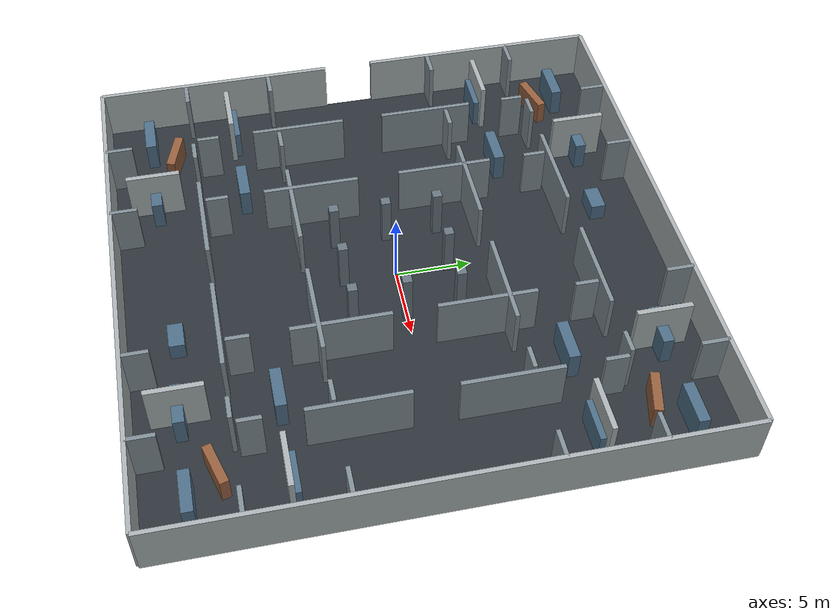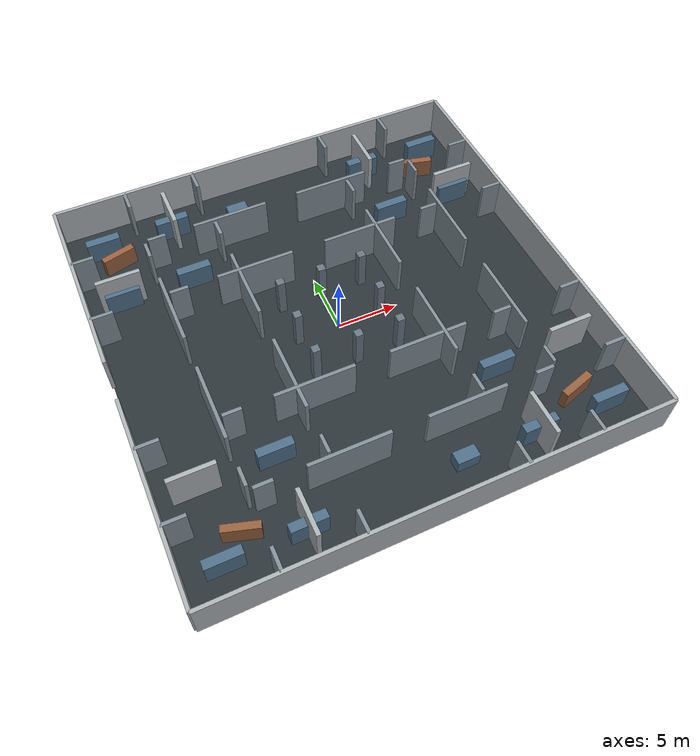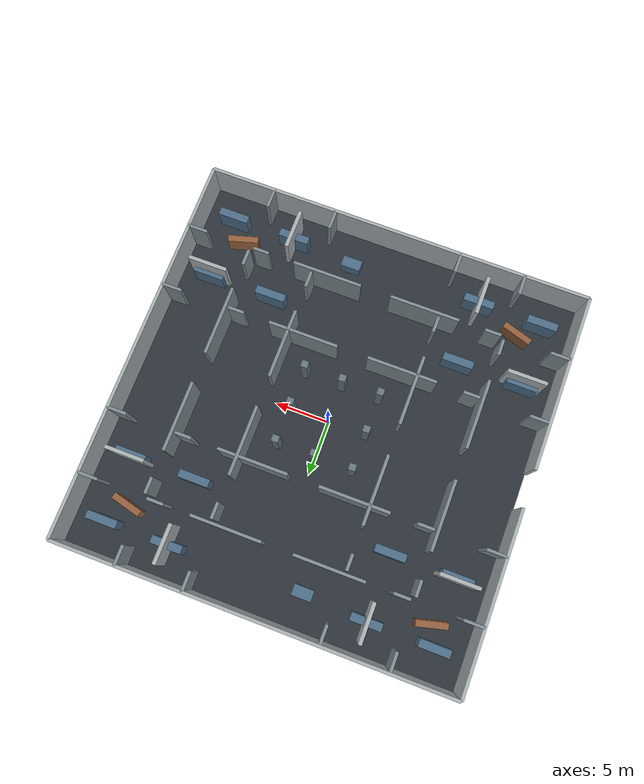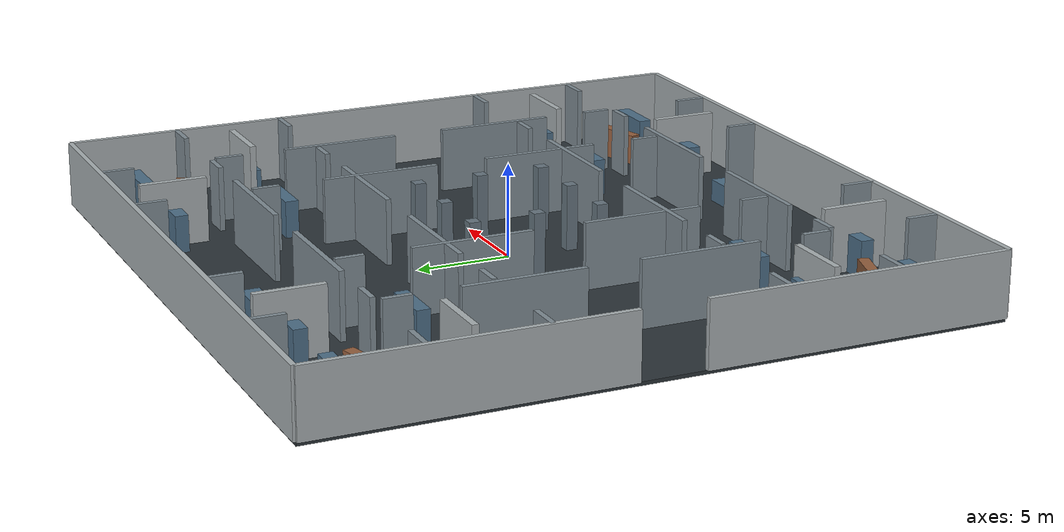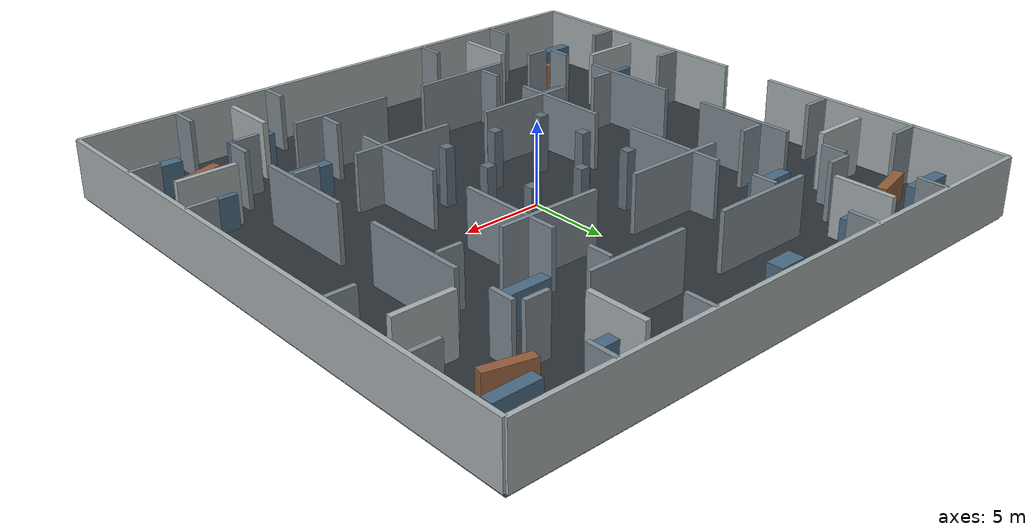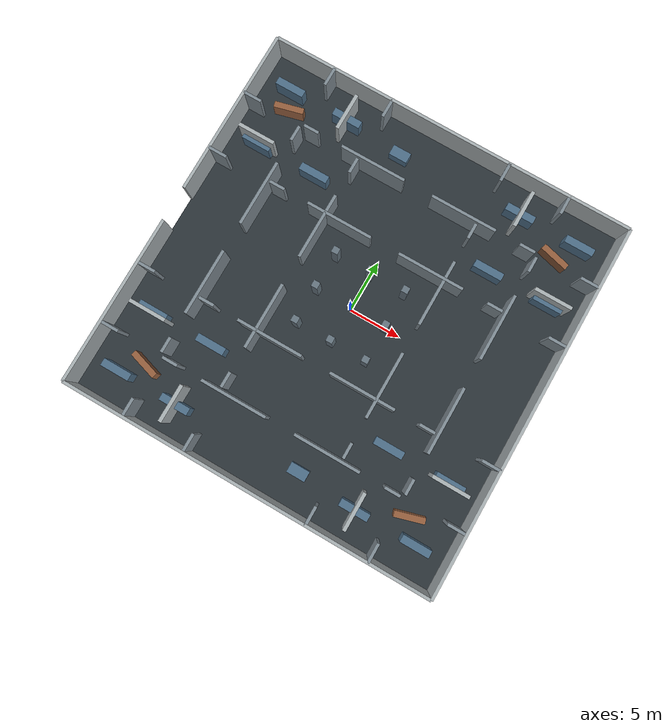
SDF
<?xml version='1.0'?>
<sdf version='1.6'>
<world name='s3_topology_stress'>
  <gravity>0 0 -9.81</gravity>
  <scene><ambient>0.62 0.64 0.66 1</ambient><background>0.72 0.75 0.78 1</background><shadows>true</shadows></scene>
  <include><uri>model://sun</uri></include>
    <model name='floor'>
    <static>true</static>
    <pose>0.0000 0.0000 -0.1000 0.000000 0.000000 0.000000</pose>
    <link name='link'>
      <collision name='collision'><geometry><box><size>36.0000 36.0000 0.2000</size></box></geometry></collision>
      <visual name='visual'><geometry><box><size>36.0000 36.0000 0.2000</size></box></geometry><material><ambient>0.170 0.200 0.220 1</ambient><diffuse>0.170 0.200 0.220 1</diffuse></material></visual>
    </link>
  </model>
  <model name='envelope_north'>
    <static>true</static>
    <pose>0.0000 18.0000 1.7500 0.000000 0.000000 0.000000</pose>
    <link name='link'>
      <collision name='collision'><geometry><box><size>36.0000 0.2800 3.5000</size></box></geometry></collision>
      <visual name='visual'><geometry><box><size>36.0000 0.2800 3.5000</size></box></geometry><material><ambient>0.660 0.690 0.700 1</ambient><diffuse>0.660 0.690 0.700 1</diffuse></material></visual>
    </link>
  </model>
  <model name='envelope_south'>
    <static>true</static>
    <pose>0.0000 -18.0000 1.7500 0.000000 0.000000 0.000000</pose>
    <link name='link'>
      <collision name='collision'><geometry><box><size>36.0000 0.2800 3.5000</size></box></geometry></collision>
      <visual name='visual'><geometry><box><size>36.0000 0.2800 3.5000</size></box></geometry><material><ambient>0.660 0.690 0.700 1</ambient><diffuse>0.660 0.690 0.700 1</diffuse></material></visual>
    </link>
  </model>
  <model name='envelope_east'>
    <static>true</static>
    <pose>18.0000 0.0000 1.7500 0.000000 0.000000 1.570796</pose>
    <link name='link'>
      <collision name='collision'><geometry><box><size>36.0000 0.2800 3.5000</size></box></geometry></collision>
      <visual name='visual'><geometry><box><size>36.0000 0.2800 3.5000</size></box></geometry><material><ambient>0.660 0.690 0.700 1</ambient><diffuse>0.660 0.690 0.700 1</diffuse></material></visual>
    </link>
  </model>
  <model name='envelope_west_00'>
    <static>true</static>
    <pose>-18.0000 -9.8500 1.7500 0.000000 0.000000 1.570796</pose>
    <link name='link'>
      <collision name='collision'><geometry><box><size>16.3000 0.2800 3.5000</size></box></geometry></collision>
      <visual name='visual'><geometry><box><size>16.3000 0.2800 3.5000</size></box></geometry><material><ambient>0.660 0.690 0.700 1</ambient><diffuse>0.660 0.690 0.700 1</diffuse></material></visual>
    </link>
  </model>
  <model name='envelope_west_01'>
    <static>true</static>
    <pose>-18.0000 9.8500 1.7500 0.000000 0.000000 1.570796</pose>
    <link name='link'>
      <collision name='collision'><geometry><box><size>16.3000 0.2800 3.5000</size></box></geometry></collision>
      <visual name='visual'><geometry><box><size>16.3000 0.2800 3.5000</size></box></geometry><material><ambient>0.660 0.690 0.700 1</ambient><diffuse>0.660 0.690 0.700 1</diffuse></material></visual>
    </link>
  </model>
  <model name='s3_horizontal_south_00'>
    <static>true</static>
    <pose>-17.1000 -12.0000 1.7500 0.000000 0.000000 0.000000</pose>
    <link name='link'>
      <collision name='collision'><geometry><box><size>1.8000 0.2800 3.5000</size></box></geometry></collision>
      <visual name='visual'><geometry><box><size>1.8000 0.2800 3.5000</size></box></geometry><material><ambient>0.500 0.550 0.580 1</ambient><diffuse>0.500 0.550 0.580 1</diffuse></material></visual>
    </link>
  </model>
  <model name='s3_horizontal_south_01'>
    <static>true</static>
    <pose>-10.9500 -12.0000 1.7500 0.000000 0.000000 0.000000</pose>
    <link name='link'>
      <collision name='collision'><geometry><box><size>1.5000 0.2800 3.5000</size></box></geometry></collision>
      <visual name='visual'><geometry><box><size>1.5000 0.2800 3.5000</size></box></geometry><material><ambient>0.500 0.550 0.580 1</ambient><diffuse>0.500 0.550 0.580 1</diffuse></material></visual>
    </link>
  </model>
  <model name='s3_horizontal_south_02'>
    <static>true</static>
    <pose>-4.6000 -12.0000 1.7500 0.000000 0.000000 0.000000</pose>
    <link name='link'>
      <collision name='collision'><geometry><box><size>6.4000 0.2800 3.5000</size></box></geometry></collision>
      <visual name='visual'><geometry><box><size>6.4000 0.2800 3.5000</size></box></geometry><material><ambient>0.500 0.550 0.580 1</ambient><diffuse>0.500 0.550 0.580 1</diffuse></material></visual>
    </link>
  </model>
  <model name='s3_horizontal_south_03'>
    <static>true</static>
    <pose>4.6000 -12.0000 1.7500 0.000000 0.000000 0.000000</pose>
    <link name='link'>
      <collision name='collision'><geometry><box><size>6.4000 0.2800 3.5000</size></box></geometry></collision>
      <visual name='visual'><geometry><box><size>6.4000 0.2800 3.5000</size></box></geometry><material><ambient>0.500 0.550 0.580 1</ambient><diffuse>0.500 0.550 0.580 1</diffuse></material></visual>
    </link>
  </model>
  <model name='s3_horizontal_south_04'>
    <static>true</static>
    <pose>10.9500 -12.0000 1.7500 0.000000 0.000000 0.000000</pose>
    <link name='link'>
      <collision name='collision'><geometry><box><size>1.5000 0.2800 3.5000</size></box></geometry></collision>
      <visual name='visual'><geometry><box><size>1.5000 0.2800 3.5000</size></box></geometry><material><ambient>0.500 0.550 0.580 1</ambient><diffuse>0.500 0.550 0.580 1</diffuse></material></visual>
    </link>
  </model>
  <model name='s3_horizontal_south_05'>
    <static>true</static>
    <pose>17.1000 -12.0000 1.7500 0.000000 0.000000 0.000000</pose>
    <link name='link'>
      <collision name='collision'><geometry><box><size>1.8000 0.2800 3.5000</size></box></geometry></collision>
      <visual name='visual'><geometry><box><size>1.8000 0.2800 3.5000</size></box></geometry><material><ambient>0.500 0.550 0.580 1</ambient><diffuse>0.500 0.550 0.580 1</diffuse></material></visual>
    </link>
  </model>
  <model name='s3_horizontal_south_inner_00'>
    <static>true</static>
    <pose>-17.1000 -6.0000 1.7500 0.000000 0.000000 0.000000</pose>
    <link name='link'>
      <collision name='collision'><geometry><box><size>1.8000 0.2800 3.5000</size></box></geometry></collision>
      <visual name='visual'><geometry><box><size>1.8000 0.2800 3.5000</size></box></geometry><material><ambient>0.500 0.550 0.580 1</ambient><diffuse>0.500 0.550 0.580 1</diffuse></material></visual>
    </link>
  </model>
  <model name='s3_horizontal_south_inner_01'>
    <static>true</static>
    <pose>-10.9500 -6.0000 1.7500 0.000000 0.000000 0.000000</pose>
    <link name='link'>
      <collision name='collision'><geometry><box><size>1.5000 0.2800 3.5000</size></box></geometry></collision>
      <visual name='visual'><geometry><box><size>1.5000 0.2800 3.5000</size></box></geometry><material><ambient>0.500 0.550 0.580 1</ambient><diffuse>0.500 0.550 0.580 1</diffuse></material></visual>
    </link>
  </model>
  <model name='s3_horizontal_south_inner_02'>
    <static>true</static>
    <pose>-4.6000 -6.0000 1.7500 0.000000 0.000000 0.000000</pose>
    <link name='link'>
      <collision name='collision'><geometry><box><size>6.4000 0.2800 3.5000</size></box></geometry></collision>
      <visual name='visual'><geometry><box><size>6.4000 0.2800 3.5000</size></box></geometry><material><ambient>0.500 0.550 0.580 1</ambient><diffuse>0.500 0.550 0.580 1</diffuse></material></visual>
    </link>
  </model>
  <model name='s3_horizontal_south_inner_03'>
    <static>true</static>
    <pose>4.6000 -6.0000 1.7500 0.000000 0.000000 0.000000</pose>
    <link name='link'>
      <collision name='collision'><geometry><box><size>6.4000 0.2800 3.5000</size></box></geometry></collision>
      <visual name='visual'><geometry><box><size>6.4000 0.2800 3.5000</size></box></geometry><material><ambient>0.500 0.550 0.580 1</ambient><diffuse>0.500 0.550 0.580 1</diffuse></material></visual>
    </link>
  </model>
  <model name='s3_horizontal_south_inner_04'>
    <static>true</static>
    <pose>10.9500 -6.0000 1.7500 0.000000 0.000000 0.000000</pose>
    <link name='link'>
      <collision name='collision'><geometry><box><size>1.5000 0.2800 3.5000</size></box></geometry></collision>
      <visual name='visual'><geometry><box><size>1.5000 0.2800 3.5000</size></box></geometry><material><ambient>0.500 0.550 0.580 1</ambient><diffuse>0.500 0.550 0.580 1</diffuse></material></visual>
    </link>
  </model>
  <model name='s3_horizontal_south_inner_05'>
    <static>true</static>
    <pose>17.1000 -6.0000 1.7500 0.000000 0.000000 0.000000</pose>
    <link name='link'>
      <collision name='collision'><geometry><box><size>1.8000 0.2800 3.5000</size></box></geometry></collision>
      <visual name='visual'><geometry><box><size>1.8000 0.2800 3.5000</size></box></geometry><material><ambient>0.500 0.550 0.580 1</ambient><diffuse>0.500 0.550 0.580 1</diffuse></material></visual>
    </link>
  </model>
  <model name='s3_horizontal_north_inner_00'>
    <static>true</static>
    <pose>-17.1000 6.0000 1.7500 0.000000 0.000000 0.000000</pose>
    <link name='link'>
      <collision name='collision'><geometry><box><size>1.8000 0.2800 3.5000</size></box></geometry></collision>
      <visual name='visual'><geometry><box><size>1.8000 0.2800 3.5000</size></box></geometry><material><ambient>0.500 0.550 0.580 1</ambient><diffuse>0.500 0.550 0.580 1</diffuse></material></visual>
    </link>
  </model>
  <model name='s3_horizontal_north_inner_01'>
    <static>true</static>
    <pose>-10.9500 6.0000 1.7500 0.000000 0.000000 0.000000</pose>
    <link name='link'>
      <collision name='collision'><geometry><box><size>1.5000 0.2800 3.5000</size></box></geometry></collision>
      <visual name='visual'><geometry><box><size>1.5000 0.2800 3.5000</size></box></geometry><material><ambient>0.500 0.550 0.580 1</ambient><diffuse>0.500 0.550 0.580 1</diffuse></material></visual>
    </link>
  </model>
  <model name='s3_horizontal_north_inner_02'>
    <static>true</static>
    <pose>-4.6000 6.0000 1.7500 0.000000 0.000000 0.000000</pose>
    <link name='link'>
      <collision name='collision'><geometry><box><size>6.4000 0.2800 3.5000</size></box></geometry></collision>
      <visual name='visual'><geometry><box><size>6.4000 0.2800 3.5000</size></box></geometry><material><ambient>0.500 0.550 0.580 1</ambient><diffuse>0.500 0.550 0.580 1</diffuse></material></visual>
    </link>
  </model>
  <model name='s3_horizontal_north_inner_03'>
    <static>true</static>
    <pose>4.6000 6.0000 1.7500 0.000000 0.000000 0.000000</pose>
    <link name='link'>
      <collision name='collision'><geometry><box><size>6.4000 0.2800 3.5000</size></box></geometry></collision>
      <visual name='visual'><geometry><box><size>6.4000 0.2800 3.5000</size></box></geometry><material><ambient>0.500 0.550 0.580 1</ambient><diffuse>0.500 0.550 0.580 1</diffuse></material></visual>
    </link>
  </model>
  <model name='s3_horizontal_north_inner_04'>
    <static>true</static>
    <pose>10.9500 6.0000 1.7500 0.000000 0.000000 0.000000</pose>
    <link name='link'>
      <collision name='collision'><geometry><box><size>1.5000 0.2800 3.5000</size></box></geometry></collision>
      <visual name='visual'><geometry><box><size>1.5000 0.2800 3.5000</size></box></geometry><material><ambient>0.500 0.550 0.580 1</ambient><diffuse>0.500 0.550 0.580 1</diffuse></material></visual>
    </link>
  </model>
  <model name='s3_horizontal_north_inner_05'>
    <static>true</static>
    <pose>17.1000 6.0000 1.7500 0.000000 0.000000 0.000000</pose>
    <link name='link'>
      <collision name='collision'><geometry><box><size>1.8000 0.2800 3.5000</size></box></geometry></collision>
      <visual name='visual'><geometry><box><size>1.8000 0.2800 3.5000</size></box></geometry><material><ambient>0.500 0.550 0.580 1</ambient><diffuse>0.500 0.550 0.580 1</diffuse></material></visual>
    </link>
  </model>
  <model name='s3_horizontal_north_00'>
    <static>true</static>
    <pose>-17.1000 12.0000 1.7500 0.000000 0.000000 0.000000</pose>
    <link name='link'>
      <collision name='collision'><geometry><box><size>1.8000 0.2800 3.5000</size></box></geometry></collision>
      <visual name='visual'><geometry><box><size>1.8000 0.2800 3.5000</size></box></geometry><material><ambient>0.500 0.550 0.580 1</ambient><diffuse>0.500 0.550 0.580 1</diffuse></material></visual>
    </link>
  </model>
  <model name='s3_horizontal_north_01'>
    <static>true</static>
    <pose>-10.9500 12.0000 1.7500 0.000000 0.000000 0.000000</pose>
    <link name='link'>
      <collision name='collision'><geometry><box><size>1.5000 0.2800 3.5000</size></box></geometry></collision>
      <visual name='visual'><geometry><box><size>1.5000 0.2800 3.5000</size></box></geometry><material><ambient>0.500 0.550 0.580 1</ambient><diffuse>0.500 0.550 0.580 1</diffuse></material></visual>
    </link>
  </model>
  <model name='s3_horizontal_north_02'>
    <static>true</static>
    <pose>-4.6000 12.0000 1.7500 0.000000 0.000000 0.000000</pose>
    <link name='link'>
      <collision name='collision'><geometry><box><size>6.4000 0.2800 3.5000</size></box></geometry></collision>
      <visual name='visual'><geometry><box><size>6.4000 0.2800 3.5000</size></box></geometry><material><ambient>0.500 0.550 0.580 1</ambient><diffuse>0.500 0.550 0.580 1</diffuse></material></visual>
    </link>
  </model>
  <model name='s3_horizontal_north_03'>
    <static>true</static>
    <pose>4.6000 12.0000 1.7500 0.000000 0.000000 0.000000</pose>
    <link name='link'>
      <collision name='collision'><geometry><box><size>6.4000 0.2800 3.5000</size></box></geometry></collision>
      <visual name='visual'><geometry><box><size>6.4000 0.2800 3.5000</size></box></geometry><material><ambient>0.500 0.550 0.580 1</ambient><diffuse>0.500 0.550 0.580 1</diffuse></material></visual>
    </link>
  </model>
  <model name='s3_horizontal_north_04'>
    <static>true</static>
    <pose>10.9500 12.0000 1.7500 0.000000 0.000000 0.000000</pose>
    <link name='link'>
      <collision name='collision'><geometry><box><size>1.5000 0.2800 3.5000</size></box></geometry></collision>
      <visual name='visual'><geometry><box><size>1.5000 0.2800 3.5000</size></box></geometry><material><ambient>0.500 0.550 0.580 1</ambient><diffuse>0.500 0.550 0.580 1</diffuse></material></visual>
    </link>
  </model>
  <model name='s3_horizontal_north_05'>
    <static>true</static>
    <pose>17.1000 12.0000 1.7500 0.000000 0.000000 0.000000</pose>
    <link name='link'>
      <collision name='collision'><geometry><box><size>1.8000 0.2800 3.5000</size></box></geometry></collision>
      <visual name='visual'><geometry><box><size>1.8000 0.2800 3.5000</size></box></geometry><material><ambient>0.500 0.550 0.580 1</ambient><diffuse>0.500 0.550 0.580 1</diffuse></material></visual>
    </link>
  </model>
  <model name='s3_vertical_west_00'>
    <static>true</static>
    <pose>-12.0000 -17.1000 1.7500 0.000000 0.000000 1.570796</pose>
    <link name='link'>
      <collision name='collision'><geometry><box><size>1.8000 0.2800 3.5000</size></box></geometry></collision>
      <visual name='visual'><geometry><box><size>1.8000 0.2800 3.5000</size></box></geometry><material><ambient>0.500 0.550 0.580 1</ambient><diffuse>0.500 0.550 0.580 1</diffuse></material></visual>
    </link>
  </model>
  <model name='s3_vertical_west_01'>
    <static>true</static>
    <pose>-12.0000 -10.9500 1.7500 0.000000 0.000000 1.570796</pose>
    <link name='link'>
      <collision name='collision'><geometry><box><size>1.5000 0.2800 3.5000</size></box></geometry></collision>
      <visual name='visual'><geometry><box><size>1.5000 0.2800 3.5000</size></box></geometry><material><ambient>0.500 0.550 0.580 1</ambient><diffuse>0.500 0.550 0.580 1</diffuse></material></visual>
    </link>
  </model>
  <model name='s3_vertical_west_02'>
    <static>true</static>
    <pose>-12.0000 -4.6000 1.7500 0.000000 0.000000 1.570796</pose>
    <link name='link'>
      <collision name='collision'><geometry><box><size>6.4000 0.2800 3.5000</size></box></geometry></collision>
      <visual name='visual'><geometry><box><size>6.4000 0.2800 3.5000</size></box></geometry><material><ambient>0.500 0.550 0.580 1</ambient><diffuse>0.500 0.550 0.580 1</diffuse></material></visual>
    </link>
  </model>
  <model name='s3_vertical_west_03'>
    <static>true</static>
    <pose>-12.0000 4.6000 1.7500 0.000000 0.000000 1.570796</pose>
    <link name='link'>
      <collision name='collision'><geometry><box><size>6.4000 0.2800 3.5000</size></box></geometry></collision>
      <visual name='visual'><geometry><box><size>6.4000 0.2800 3.5000</size></box></geometry><material><ambient>0.500 0.550 0.580 1</ambient><diffuse>0.500 0.550 0.580 1</diffuse></material></visual>
    </link>
  </model>
  <model name='s3_vertical_west_04'>
    <static>true</static>
    <pose>-12.0000 10.9500 1.7500 0.000000 0.000000 1.570796</pose>
    <link name='link'>
      <collision name='collision'><geometry><box><size>1.5000 0.2800 3.5000</size></box></geometry></collision>
      <visual name='visual'><geometry><box><size>1.5000 0.2800 3.5000</size></box></geometry><material><ambient>0.500 0.550 0.580 1</ambient><diffuse>0.500 0.550 0.580 1</diffuse></material></visual>
    </link>
  </model>
  <model name='s3_vertical_west_05'>
    <static>true</static>
    <pose>-12.0000 17.1000 1.7500 0.000000 0.000000 1.570796</pose>
    <link name='link'>
      <collision name='collision'><geometry><box><size>1.8000 0.2800 3.5000</size></box></geometry></collision>
      <visual name='visual'><geometry><box><size>1.8000 0.2800 3.5000</size></box></geometry><material><ambient>0.500 0.550 0.580 1</ambient><diffuse>0.500 0.550 0.580 1</diffuse></material></visual>
    </link>
  </model>
  <model name='s3_vertical_west_inner_00'>
    <static>true</static>
    <pose>-6.0000 -17.1000 1.7500 0.000000 0.000000 1.570796</pose>
    <link name='link'>
      <collision name='collision'><geometry><box><size>1.8000 0.2800 3.5000</size></box></geometry></collision>
      <visual name='visual'><geometry><box><size>1.8000 0.2800 3.5000</size></box></geometry><material><ambient>0.500 0.550 0.580 1</ambient><diffuse>0.500 0.550 0.580 1</diffuse></material></visual>
    </link>
  </model>
  <model name='s3_vertical_west_inner_01'>
    <static>true</static>
    <pose>-6.0000 -10.9500 1.7500 0.000000 0.000000 1.570796</pose>
    <link name='link'>
      <collision name='collision'><geometry><box><size>1.5000 0.2800 3.5000</size></box></geometry></collision>
      <visual name='visual'><geometry><box><size>1.5000 0.2800 3.5000</size></box></geometry><material><ambient>0.500 0.550 0.580 1</ambient><diffuse>0.500 0.550 0.580 1</diffuse></material></visual>
    </link>
  </model>
  <model name='s3_vertical_west_inner_02'>
    <static>true</static>
    <pose>-6.0000 -4.6000 1.7500 0.000000 0.000000 1.570796</pose>
    <link name='link'>
      <collision name='collision'><geometry><box><size>6.4000 0.2800 3.5000</size></box></geometry></collision>
      <visual name='visual'><geometry><box><size>6.4000 0.2800 3.5000</size></box></geometry><material><ambient>0.500 0.550 0.580 1</ambient><diffuse>0.500 0.550 0.580 1</diffuse></material></visual>
    </link>
  </model>
  <model name='s3_vertical_west_inner_03'>
    <static>true</static>
    <pose>-6.0000 4.6000 1.7500 0.000000 0.000000 1.570796</pose>
    <link name='link'>
      <collision name='collision'><geometry><box><size>6.4000 0.2800 3.5000</size></box></geometry></collision>
      <visual name='visual'><geometry><box><size>6.4000 0.2800 3.5000</size></box></geometry><material><ambient>0.500 0.550 0.580 1</ambient><diffuse>0.500 0.550 0.580 1</diffuse></material></visual>
    </link>
  </model>
  <model name='s3_vertical_west_inner_04'>
    <static>true</static>
    <pose>-6.0000 10.9500 1.7500 0.000000 0.000000 1.570796</pose>
    <link name='link'>
      <collision name='collision'><geometry><box><size>1.5000 0.2800 3.5000</size></box></geometry></collision>
      <visual name='visual'><geometry><box><size>1.5000 0.2800 3.5000</size></box></geometry><material><ambient>0.500 0.550 0.580 1</ambient><diffuse>0.500 0.550 0.580 1</diffuse></material></visual>
    </link>
  </model>
  <model name='s3_vertical_west_inner_05'>
    <static>true</static>
    <pose>-6.0000 17.1000 1.7500 0.000000 0.000000 1.570796</pose>
    <link name='link'>
      <collision name='collision'><geometry><box><size>1.8000 0.2800 3.5000</size></box></geometry></collision>
      <visual name='visual'><geometry><box><size>1.8000 0.2800 3.5000</size></box></geometry><material><ambient>0.500 0.550 0.580 1</ambient><diffuse>0.500 0.550 0.580 1</diffuse></material></visual>
    </link>
  </model>
  <model name='s3_vertical_east_inner_00'>
    <static>true</static>
    <pose>6.0000 -17.1000 1.7500 0.000000 0.000000 1.570796</pose>
    <link name='link'>
      <collision name='collision'><geometry><box><size>1.8000 0.2800 3.5000</size></box></geometry></collision>
      <visual name='visual'><geometry><box><size>1.8000 0.2800 3.5000</size></box></geometry><material><ambient>0.500 0.550 0.580 1</ambient><diffuse>0.500 0.550 0.580 1</diffuse></material></visual>
    </link>
  </model>
  <model name='s3_vertical_east_inner_01'>
    <static>true</static>
    <pose>6.0000 -10.9500 1.7500 0.000000 0.000000 1.570796</pose>
    <link name='link'>
      <collision name='collision'><geometry><box><size>1.5000 0.2800 3.5000</size></box></geometry></collision>
      <visual name='visual'><geometry><box><size>1.5000 0.2800 3.5000</size></box></geometry><material><ambient>0.500 0.550 0.580 1</ambient><diffuse>0.500 0.550 0.580 1</diffuse></material></visual>
    </link>
  </model>
  <model name='s3_vertical_east_inner_02'>
    <static>true</static>
    <pose>6.0000 -4.6000 1.7500 0.000000 0.000000 1.570796</pose>
    <link name='link'>
      <collision name='collision'><geometry><box><size>6.4000 0.2800 3.5000</size></box></geometry></collision>
      <visual name='visual'><geometry><box><size>6.4000 0.2800 3.5000</size></box></geometry><material><ambient>0.500 0.550 0.580 1</ambient><diffuse>0.500 0.550 0.580 1</diffuse></material></visual>
    </link>
  </model>
  <model name='s3_vertical_east_inner_03'>
    <static>true</static>
    <pose>6.0000 4.6000 1.7500 0.000000 0.000000 1.570796</pose>
    <link name='link'>
      <collision name='collision'><geometry><box><size>6.4000 0.2800 3.5000</size></box></geometry></collision>
      <visual name='visual'><geometry><box><size>6.4000 0.2800 3.5000</size></box></geometry><material><ambient>0.500 0.550 0.580 1</ambient><diffuse>0.500 0.550 0.580 1</diffuse></material></visual>
    </link>
  </model>
  <model name='s3_vertical_east_inner_04'>
    <static>true</static>
    <pose>6.0000 10.9500 1.7500 0.000000 0.000000 1.570796</pose>
    <link name='link'>
      <collision name='collision'><geometry><box><size>1.5000 0.2800 3.5000</size></box></geometry></collision>
      <visual name='visual'><geometry><box><size>1.5000 0.2800 3.5000</size></box></geometry><material><ambient>0.500 0.550 0.580 1</ambient><diffuse>0.500 0.550 0.580 1</diffuse></material></visual>
    </link>
  </model>
  <model name='s3_vertical_east_inner_05'>
    <static>true</static>
    <pose>6.0000 17.1000 1.7500 0.000000 0.000000 1.570796</pose>
    <link name='link'>
      <collision name='collision'><geometry><box><size>1.8000 0.2800 3.5000</size></box></geometry></collision>
      <visual name='visual'><geometry><box><size>1.8000 0.2800 3.5000</size></box></geometry><material><ambient>0.500 0.550 0.580 1</ambient><diffuse>0.500 0.550 0.580 1</diffuse></material></visual>
    </link>
  </model>
  <model name='s3_vertical_east_00'>
    <static>true</static>
    <pose>12.0000 -17.1000 1.7500 0.000000 0.000000 1.570796</pose>
    <link name='link'>
      <collision name='collision'><geometry><box><size>1.8000 0.2800 3.5000</size></box></geometry></collision>
      <visual name='visual'><geometry><box><size>1.8000 0.2800 3.5000</size></box></geometry><material><ambient>0.500 0.550 0.580 1</ambient><diffuse>0.500 0.550 0.580 1</diffuse></material></visual>
    </link>
  </model>
  <model name='s3_vertical_east_01'>
    <static>true</static>
    <pose>12.0000 -10.9500 1.7500 0.000000 0.000000 1.570796</pose>
    <link name='link'>
      <collision name='collision'><geometry><box><size>1.5000 0.2800 3.5000</size></box></geometry></collision>
      <visual name='visual'><geometry><box><size>1.5000 0.2800 3.5000</size></box></geometry><material><ambient>0.500 0.550 0.580 1</ambient><diffuse>0.500 0.550 0.580 1</diffuse></material></visual>
    </link>
  </model>
  <model name='s3_vertical_east_02'>
    <static>true</static>
    <pose>12.0000 -4.6000 1.7500 0.000000 0.000000 1.570796</pose>
    <link name='link'>
      <collision name='collision'><geometry><box><size>6.4000 0.2800 3.5000</size></box></geometry></collision>
      <visual name='visual'><geometry><box><size>6.4000 0.2800 3.5000</size></box></geometry><material><ambient>0.500 0.550 0.580 1</ambient><diffuse>0.500 0.550 0.580 1</diffuse></material></visual>
    </link>
  </model>
  <model name='s3_vertical_east_03'>
    <static>true</static>
    <pose>12.0000 4.6000 1.7500 0.000000 0.000000 1.570796</pose>
    <link name='link'>
      <collision name='collision'><geometry><box><size>6.4000 0.2800 3.5000</size></box></geometry></collision>
      <visual name='visual'><geometry><box><size>6.4000 0.2800 3.5000</size></box></geometry><material><ambient>0.500 0.550 0.580 1</ambient><diffuse>0.500 0.550 0.580 1</diffuse></material></visual>
    </link>
  </model>
  <model name='s3_vertical_east_04'>
    <static>true</static>
    <pose>12.0000 10.9500 1.7500 0.000000 0.000000 1.570796</pose>
    <link name='link'>
      <collision name='collision'><geometry><box><size>1.5000 0.2800 3.5000</size></box></geometry></collision>
      <visual name='visual'><geometry><box><size>1.5000 0.2800 3.5000</size></box></geometry><material><ambient>0.500 0.550 0.580 1</ambient><diffuse>0.500 0.550 0.580 1</diffuse></material></visual>
    </link>
  </model>
  <model name='s3_vertical_east_05'>
    <static>true</static>
    <pose>12.0000 17.1000 1.7500 0.000000 0.000000 1.570796</pose>
    <link name='link'>
      <collision name='collision'><geometry><box><size>1.8000 0.2800 3.5000</size></box></geometry></collision>
      <visual name='visual'><geometry><box><size>1.8000 0.2800 3.5000</size></box></geometry><material><ambient>0.500 0.550 0.580 1</ambient><diffuse>0.500 0.550 0.580 1</diffuse></material></visual>
    </link>
  </model>
  <model name='s3_visibility_barrier_00'>
    <static>true</static>
    <pose>-15.0000 9.2000 1.7500 0.000000 0.000000 0.000000</pose>
    <link name='link'>
      <collision name='collision'><geometry><box><size>3.6000 0.3400 3.5000</size></box></geometry></collision>
      <visual name='visual'><geometry><box><size>3.6000 0.3400 3.5000</size></box></geometry><material><ambient>0.660 0.690 0.700 1</ambient><diffuse>0.660 0.690 0.700 1</diffuse></material></visual>
    </link>
  </model>
  <model name='s3_visibility_barrier_01'>
    <static>true</static>
    <pose>-9.0000 15.0000 1.7500 0.000000 0.000000 0.000000</pose>
    <link name='link'>
      <collision name='collision'><geometry><box><size>0.3400 3.6000 3.5000</size></box></geometry></collision>
      <visual name='visual'><geometry><box><size>0.3400 3.6000 3.5000</size></box></geometry><material><ambient>0.660 0.690 0.700 1</ambient><diffuse>0.660 0.690 0.700 1</diffuse></material></visual>
    </link>
  </model>
  <model name='s3_visibility_barrier_02'>
    <static>true</static>
    <pose>9.0000 15.0000 1.7500 0.000000 0.000000 0.000000</pose>
    <link name='link'>
      <collision name='collision'><geometry><box><size>0.3400 3.6000 3.5000</size></box></geometry></collision>
      <visual name='visual'><geometry><box><size>0.3400 3.6000 3.5000</size></box></geometry><material><ambient>0.660 0.690 0.700 1</ambient><diffuse>0.660 0.690 0.700 1</diffuse></material></visual>
    </link>
  </model>
  <model name='s3_visibility_barrier_03'>
    <static>true</static>
    <pose>15.0000 9.2000 1.7500 0.000000 0.000000 0.000000</pose>
    <link name='link'>
      <collision name='collision'><geometry><box><size>3.6000 0.3400 3.5000</size></box></geometry></collision>
      <visual name='visual'><geometry><box><size>3.6000 0.3400 3.5000</size></box></geometry><material><ambient>0.660 0.690 0.700 1</ambient><diffuse>0.660 0.690 0.700 1</diffuse></material></visual>
    </link>
  </model>
  <model name='s3_visibility_barrier_04'>
    <static>true</static>
    <pose>-15.0000 -9.2000 1.7500 0.000000 0.000000 0.000000</pose>
    <link name='link'>
      <collision name='collision'><geometry><box><size>3.6000 0.3400 3.5000</size></box></geometry></collision>
      <visual name='visual'><geometry><box><size>3.6000 0.3400 3.5000</size></box></geometry><material><ambient>0.660 0.690 0.700 1</ambient><diffuse>0.660 0.690 0.700 1</diffuse></material></visual>
    </link>
  </model>
  <model name='s3_visibility_barrier_05'>
    <static>true</static>
    <pose>-9.0000 -15.0000 1.7500 0.000000 0.000000 0.000000</pose>
    <link name='link'>
      <collision name='collision'><geometry><box><size>0.3400 3.6000 3.5000</size></box></geometry></collision>
      <visual name='visual'><geometry><box><size>0.3400 3.6000 3.5000</size></box></geometry><material><ambient>0.660 0.690 0.700 1</ambient><diffuse>0.660 0.690 0.700 1</diffuse></material></visual>
    </link>
  </model>
  <model name='s3_visibility_barrier_06'>
    <static>true</static>
    <pose>9.0000 -15.0000 1.7500 0.000000 0.000000 0.000000</pose>
    <link name='link'>
      <collision name='collision'><geometry><box><size>0.3400 3.6000 3.5000</size></box></geometry></collision>
      <visual name='visual'><geometry><box><size>0.3400 3.6000 3.5000</size></box></geometry><material><ambient>0.660 0.690 0.700 1</ambient><diffuse>0.660 0.690 0.700 1</diffuse></material></visual>
    </link>
  </model>
  <model name='s3_visibility_barrier_07'>
    <static>true</static>
    <pose>15.0000 -9.2000 1.7500 0.000000 0.000000 0.000000</pose>
    <link name='link'>
      <collision name='collision'><geometry><box><size>3.6000 0.3400 3.5000</size></box></geometry></collision>
      <visual name='visual'><geometry><box><size>3.6000 0.3400 3.5000</size></box></geometry><material><ambient>0.660 0.690 0.700 1</ambient><diffuse>0.660 0.690 0.700 1</diffuse></material></visual>
    </link>
  </model>
  <model name='s3_rack_00'>
    <static>true</static>
    <pose>-15.0000 -15.0000 1.0000 0.000000 0.000000 0.000000</pose>
    <link name='link'>
      <collision name='collision'><geometry><box><size>2.8000 0.7200 2.0000</size></box></geometry></collision>
      <visual name='visual'><geometry><box><size>2.8000 0.7200 2.0000</size></box></geometry><material><ambient>0.300 0.430 0.530 1</ambient><diffuse>0.300 0.430 0.530 1</diffuse></material></visual>
    </link>
  </model>
  <model name='s3_rack_01'>
    <static>true</static>
    <pose>-9.0000 -15.0000 1.0000 0.000000 0.000000 0.000000</pose>
    <link name='link'>
      <collision name='collision'><geometry><box><size>2.8000 0.7200 2.0000</size></box></geometry></collision>
      <visual name='visual'><geometry><box><size>2.8000 0.7200 2.0000</size></box></geometry><material><ambient>0.300 0.430 0.530 1</ambient><diffuse>0.300 0.430 0.530 1</diffuse></material></visual>
    </link>
  </model>
  <model name='s3_rack_02'>
    <static>true</static>
    <pose>9.0000 -15.0000 1.0000 0.000000 0.000000 0.000000</pose>
    <link name='link'>
      <collision name='collision'><geometry><box><size>2.8000 0.7200 2.0000</size></box></geometry></collision>
      <visual name='visual'><geometry><box><size>2.8000 0.7200 2.0000</size></box></geometry><material><ambient>0.300 0.430 0.530 1</ambient><diffuse>0.300 0.430 0.530 1</diffuse></material></visual>
    </link>
  </model>
  <model name='s3_rack_03'>
    <static>true</static>
    <pose>15.0000 -15.0000 1.0000 0.000000 0.000000 0.000000</pose>
    <link name='link'>
      <collision name='collision'><geometry><box><size>2.8000 0.7200 2.0000</size></box></geometry></collision>
      <visual name='visual'><geometry><box><size>2.8000 0.7200 2.0000</size></box></geometry><material><ambient>0.300 0.430 0.530 1</ambient><diffuse>0.300 0.430 0.530 1</diffuse></material></visual>
    </link>
  </model>
  <model name='s3_rack_04'>
    <static>true</static>
    <pose>-15.0000 -9.0000 1.0000 0.000000 0.000000 0.000000</pose>
    <link name='link'>
      <collision name='collision'><geometry><box><size>2.8000 0.7200 2.0000</size></box></geometry></collision>
      <visual name='visual'><geometry><box><size>2.8000 0.7200 2.0000</size></box></geometry><material><ambient>0.300 0.430 0.530 1</ambient><diffuse>0.300 0.430 0.530 1</diffuse></material></visual>
    </link>
  </model>
  <model name='s3_rack_05'>
    <static>true</static>
    <pose>-9.0000 -9.0000 1.0000 0.000000 0.000000 0.000000</pose>
    <link name='link'>
      <collision name='collision'><geometry><box><size>2.8000 0.7200 2.0000</size></box></geometry></collision>
      <visual name='visual'><geometry><box><size>2.8000 0.7200 2.0000</size></box></geometry><material><ambient>0.300 0.430 0.530 1</ambient><diffuse>0.300 0.430 0.530 1</diffuse></material></visual>
    </link>
  </model>
  <model name='s3_rack_06'>
    <static>true</static>
    <pose>9.0000 -9.0000 1.0000 0.000000 0.000000 0.000000</pose>
    <link name='link'>
      <collision name='collision'><geometry><box><size>2.8000 0.7200 2.0000</size></box></geometry></collision>
      <visual name='visual'><geometry><box><size>2.8000 0.7200 2.0000</size></box></geometry><material><ambient>0.300 0.430 0.530 1</ambient><diffuse>0.300 0.430 0.530 1</diffuse></material></visual>
    </link>
  </model>
  <model name='s3_rack_07'>
    <static>true</static>
    <pose>15.0000 -9.0000 1.0000 0.000000 0.000000 0.000000</pose>
    <link name='link'>
      <collision name='collision'><geometry><box><size>2.8000 0.7200 2.0000</size></box></geometry></collision>
      <visual name='visual'><geometry><box><size>2.8000 0.7200 2.0000</size></box></geometry><material><ambient>0.300 0.430 0.530 1</ambient><diffuse>0.300 0.430 0.530 1</diffuse></material></visual>
    </link>
  </model>
  <model name='s3_rack_08'>
    <static>true</static>
    <pose>-15.0000 9.0000 1.0000 0.000000 0.000000 0.000000</pose>
    <link name='link'>
      <collision name='collision'><geometry><box><size>2.8000 0.7200 2.0000</size></box></geometry></collision>
      <visual name='visual'><geometry><box><size>2.8000 0.7200 2.0000</size></box></geometry><material><ambient>0.300 0.430 0.530 1</ambient><diffuse>0.300 0.430 0.530 1</diffuse></material></visual>
    </link>
  </model>
  <model name='s3_rack_09'>
    <static>true</static>
    <pose>-9.0000 9.0000 1.0000 0.000000 0.000000 0.000000</pose>
    <link name='link'>
      <collision name='collision'><geometry><box><size>2.8000 0.7200 2.0000</size></box></geometry></collision>
      <visual name='visual'><geometry><box><size>2.8000 0.7200 2.0000</size></box></geometry><material><ambient>0.300 0.430 0.530 1</ambient><diffuse>0.300 0.430 0.530 1</diffuse></material></visual>
    </link>
  </model>
  <model name='s3_rack_10'>
    <static>true</static>
    <pose>9.0000 9.0000 1.0000 0.000000 0.000000 0.000000</pose>
    <link name='link'>
      <collision name='collision'><geometry><box><size>2.8000 0.7200 2.0000</size></box></geometry></collision>
      <visual name='visual'><geometry><box><size>2.8000 0.7200 2.0000</size></box></geometry><material><ambient>0.300 0.430 0.530 1</ambient><diffuse>0.300 0.430 0.530 1</diffuse></material></visual>
    </link>
  </model>
  <model name='s3_rack_11'>
    <static>true</static>
    <pose>15.0000 9.0000 1.0000 0.000000 0.000000 0.000000</pose>
    <link name='link'>
      <collision name='collision'><geometry><box><size>2.8000 0.7200 2.0000</size></box></geometry></collision>
      <visual name='visual'><geometry><box><size>2.8000 0.7200 2.0000</size></box></geometry><material><ambient>0.300 0.430 0.530 1</ambient><diffuse>0.300 0.430 0.530 1</diffuse></material></visual>
    </link>
  </model>
  <model name='s3_rack_12'>
    <static>true</static>
    <pose>-15.0000 15.0000 1.0000 0.000000 0.000000 0.000000</pose>
    <link name='link'>
      <collision name='collision'><geometry><box><size>2.8000 0.7200 2.0000</size></box></geometry></collision>
      <visual name='visual'><geometry><box><size>2.8000 0.7200 2.0000</size></box></geometry><material><ambient>0.300 0.430 0.530 1</ambient><diffuse>0.300 0.430 0.530 1</diffuse></material></visual>
    </link>
  </model>
  <model name='s3_rack_13'>
    <static>true</static>
    <pose>-9.0000 15.0000 1.0000 0.000000 0.000000 0.000000</pose>
    <link name='link'>
      <collision name='collision'><geometry><box><size>2.8000 0.7200 2.0000</size></box></geometry></collision>
      <visual name='visual'><geometry><box><size>2.8000 0.7200 2.0000</size></box></geometry><material><ambient>0.300 0.430 0.530 1</ambient><diffuse>0.300 0.430 0.530 1</diffuse></material></visual>
    </link>
  </model>
  <model name='s3_rack_14'>
    <static>true</static>
    <pose>9.0000 15.0000 1.0000 0.000000 0.000000 0.000000</pose>
    <link name='link'>
      <collision name='collision'><geometry><box><size>2.8000 0.7200 2.0000</size></box></geometry></collision>
      <visual name='visual'><geometry><box><size>2.8000 0.7200 2.0000</size></box></geometry><material><ambient>0.300 0.430 0.530 1</ambient><diffuse>0.300 0.430 0.530 1</diffuse></material></visual>
    </link>
  </model>
  <model name='s3_rack_15'>
    <static>true</static>
    <pose>15.0000 15.0000 1.0000 0.000000 0.000000 0.000000</pose>
    <link name='link'>
      <collision name='collision'><geometry><box><size>2.8000 0.7200 2.0000</size></box></geometry></collision>
      <visual name='visual'><geometry><box><size>2.8000 0.7200 2.0000</size></box></geometry><material><ambient>0.300 0.430 0.530 1</ambient><diffuse>0.300 0.430 0.530 1</diffuse></material></visual>
    </link>
  </model>
  <model name='s3_rack_16'>
    <static>true</static>
    <pose>-3.2000 14.7000 0.6000 0.000000 0.000000 0.000000</pose>
    <link name='link'>
      <collision name='collision'><geometry><box><size>1.8000 1.0000 1.2000</size></box></geometry></collision>
      <visual name='visual'><geometry><box><size>1.8000 1.0000 1.2000</size></box></geometry><material><ambient>0.300 0.430 0.530 1</ambient><diffuse>0.300 0.430 0.530 1</diffuse></material></visual>
    </link>
  </model>
  <model name='s3_rack_17'>
    <static>true</static>
    <pose>3.2000 -14.7000 0.6000 0.000000 0.000000 0.000000</pose>
    <link name='link'>
      <collision name='collision'><geometry><box><size>1.8000 1.0000 1.2000</size></box></geometry></collision>
      <visual name='visual'><geometry><box><size>1.8000 1.0000 1.2000</size></box></geometry><material><ambient>0.300 0.430 0.530 1</ambient><diffuse>0.300 0.430 0.530 1</diffuse></material></visual>
    </link>
  </model>
  <model name='s3_core_column_00'>
    <static>true</static>
    <pose>-3.5000 3.5000 1.7500 0.000000 0.000000 0.000000</pose>
    <link name='link'>
      <collision name='collision'><geometry><box><size>0.6200 0.6200 3.5000</size></box></geometry></collision>
      <visual name='visual'><geometry><box><size>0.6200 0.6200 3.5000</size></box></geometry><material><ambient>0.400 0.460 0.500 1</ambient><diffuse>0.400 0.460 0.500 1</diffuse></material></visual>
    </link>
  </model>
  <model name='s3_core_column_01'>
    <static>true</static>
    <pose>0.0000 3.5000 1.7500 0.000000 0.000000 0.000000</pose>
    <link name='link'>
      <collision name='collision'><geometry><box><size>0.6200 0.6200 3.5000</size></box></geometry></collision>
      <visual name='visual'><geometry><box><size>0.6200 0.6200 3.5000</size></box></geometry><material><ambient>0.400 0.460 0.500 1</ambient><diffuse>0.400 0.460 0.500 1</diffuse></material></visual>
    </link>
  </model>
  <model name='s3_core_column_02'>
    <static>true</static>
    <pose>3.5000 3.5000 1.7500 0.000000 0.000000 0.000000</pose>
    <link name='link'>
      <collision name='collision'><geometry><box><size>0.6200 0.6200 3.5000</size></box></geometry></collision>
      <visual name='visual'><geometry><box><size>0.6200 0.6200 3.5000</size></box></geometry><material><ambient>0.400 0.460 0.500 1</ambient><diffuse>0.400 0.460 0.500 1</diffuse></material></visual>
    </link>
  </model>
  <model name='s3_core_column_03'>
    <static>true</static>
    <pose>-3.5000 0.0000 1.7500 0.000000 0.000000 0.000000</pose>
    <link name='link'>
      <collision name='collision'><geometry><box><size>0.6200 0.6200 3.5000</size></box></geometry></collision>
      <visual name='visual'><geometry><box><size>0.6200 0.6200 3.5000</size></box></geometry><material><ambient>0.400 0.460 0.500 1</ambient><diffuse>0.400 0.460 0.500 1</diffuse></material></visual>
    </link>
  </model>
  <model name='s3_core_column_04'>
    <static>true</static>
    <pose>3.5000 0.0000 1.7500 0.000000 0.000000 0.000000</pose>
    <link name='link'>
      <collision name='collision'><geometry><box><size>0.6200 0.6200 3.5000</size></box></geometry></collision>
      <visual name='visual'><geometry><box><size>0.6200 0.6200 3.5000</size></box></geometry><material><ambient>0.400 0.460 0.500 1</ambient><diffuse>0.400 0.460 0.500 1</diffuse></material></visual>
    </link>
  </model>
  <model name='s3_core_column_05'>
    <static>true</static>
    <pose>-3.5000 -3.5000 1.7500 0.000000 0.000000 0.000000</pose>
    <link name='link'>
      <collision name='collision'><geometry><box><size>0.6200 0.6200 3.5000</size></box></geometry></collision>
      <visual name='visual'><geometry><box><size>0.6200 0.6200 3.5000</size></box></geometry><material><ambient>0.400 0.460 0.500 1</ambient><diffuse>0.400 0.460 0.500 1</diffuse></material></visual>
    </link>
  </model>
  <model name='s3_core_column_06'>
    <static>true</static>
    <pose>0.0000 -3.5000 1.7500 0.000000 0.000000 0.000000</pose>
    <link name='link'>
      <collision name='collision'><geometry><box><size>0.6200 0.6200 3.5000</size></box></geometry></collision>
      <visual name='visual'><geometry><box><size>0.6200 0.6200 3.5000</size></box></geometry><material><ambient>0.400 0.460 0.500 1</ambient><diffuse>0.400 0.460 0.500 1</diffuse></material></visual>
    </link>
  </model>
  <model name='s3_core_column_07'>
    <static>true</static>
    <pose>3.5000 -3.5000 1.7500 0.000000 0.000000 0.000000</pose>
    <link name='link'>
      <collision name='collision'><geometry><box><size>0.6200 0.6200 3.5000</size></box></geometry></collision>
      <visual name='visual'><geometry><box><size>0.6200 0.6200 3.5000</size></box></geometry><material><ambient>0.400 0.460 0.500 1</ambient><diffuse>0.400 0.460 0.500 1</diffuse></material></visual>
    </link>
  </model>
  <model name='s3_collapse_00'>
    <static>true</static>
    <pose>-14.2000 13.3000 0.8500 0.000000 0.000000 0.250000</pose>
    <link name='link'>
      <collision name='collision'><geometry><box><size>2.8000 0.5800 1.7000</size></box></geometry></collision>
      <visual name='visual'><geometry><box><size>2.8000 0.5800 1.7000</size></box></geometry><material><ambient>0.580 0.370 0.240 1</ambient><diffuse>0.580 0.370 0.240 1</diffuse></material></visual>
    </link>
  </model>
  <model name='s3_collapse_01'>
    <static>true</static>
    <pose>-13.2000 -13.4000 0.8500 0.000000 0.000000 -0.300000</pose>
    <link name='link'>
      <collision name='collision'><geometry><box><size>2.8000 0.5800 1.7000</size></box></geometry></collision>
      <visual name='visual'><geometry><box><size>2.8000 0.5800 1.7000</size></box></geometry><material><ambient>0.580 0.370 0.240 1</ambient><diffuse>0.580 0.370 0.240 1</diffuse></material></visual>
    </link>
  </model>
  <model name='s3_collapse_02'>
    <static>true</static>
    <pose>13.6000 13.1000 0.8500 0.000000 0.000000 -0.250000</pose>
    <link name='link'>
      <collision name='collision'><geometry><box><size>2.8000 0.5800 1.7000</size></box></geometry></collision>
      <visual name='visual'><geometry><box><size>2.8000 0.5800 1.7000</size></box></geometry><material><ambient>0.580 0.370 0.240 1</ambient><diffuse>0.580 0.370 0.240 1</diffuse></material></visual>
    </link>
  </model>
  <model name='s3_collapse_03'>
    <static>true</static>
    <pose>13.4000 -13.2000 0.8500 0.000000 0.000000 0.280000</pose>
    <link name='link'>
      <collision name='collision'><geometry><box><size>2.8000 0.5800 1.7000</size></box></geometry></collision>
      <visual name='visual'><geometry><box><size>2.8000 0.5800 1.7000</size></box></geometry><material><ambient>0.580 0.370 0.240 1</ambient><diffuse>0.580 0.370 0.240 1</diffuse></material></visual>
    </link>
  </model>
</world>
</sdf>
